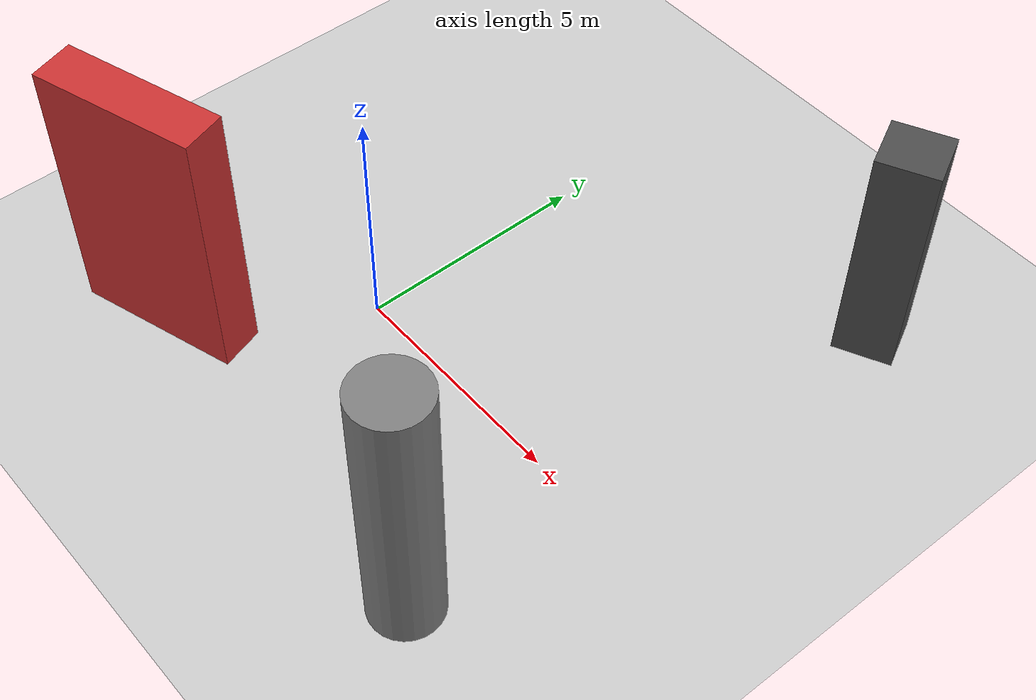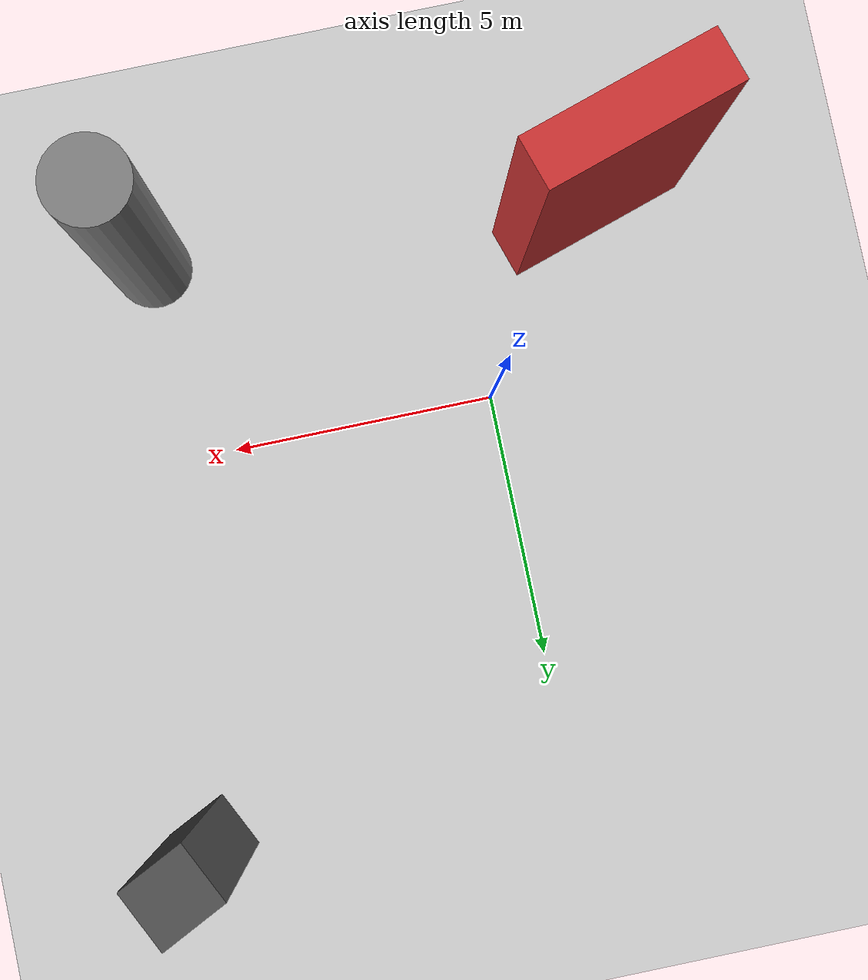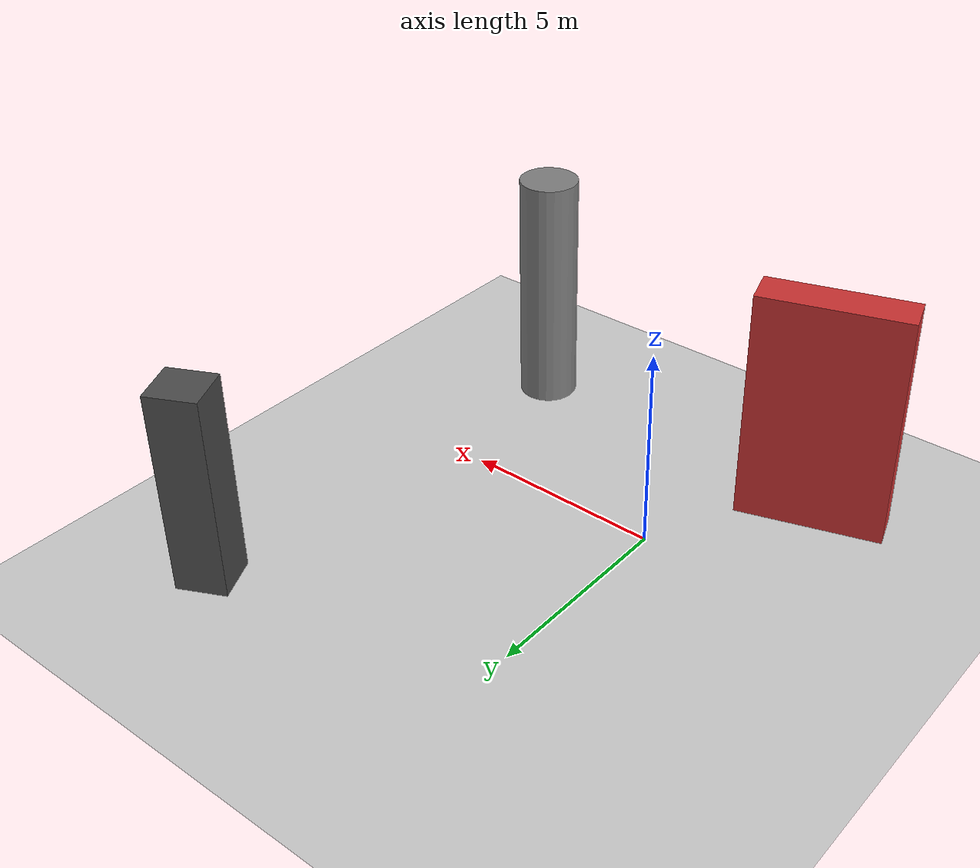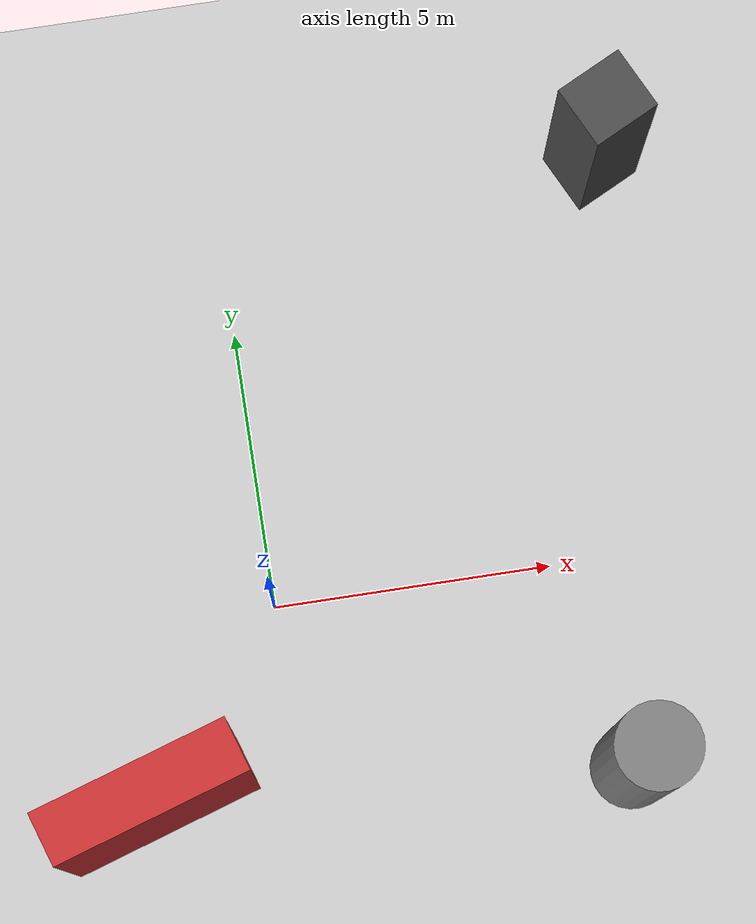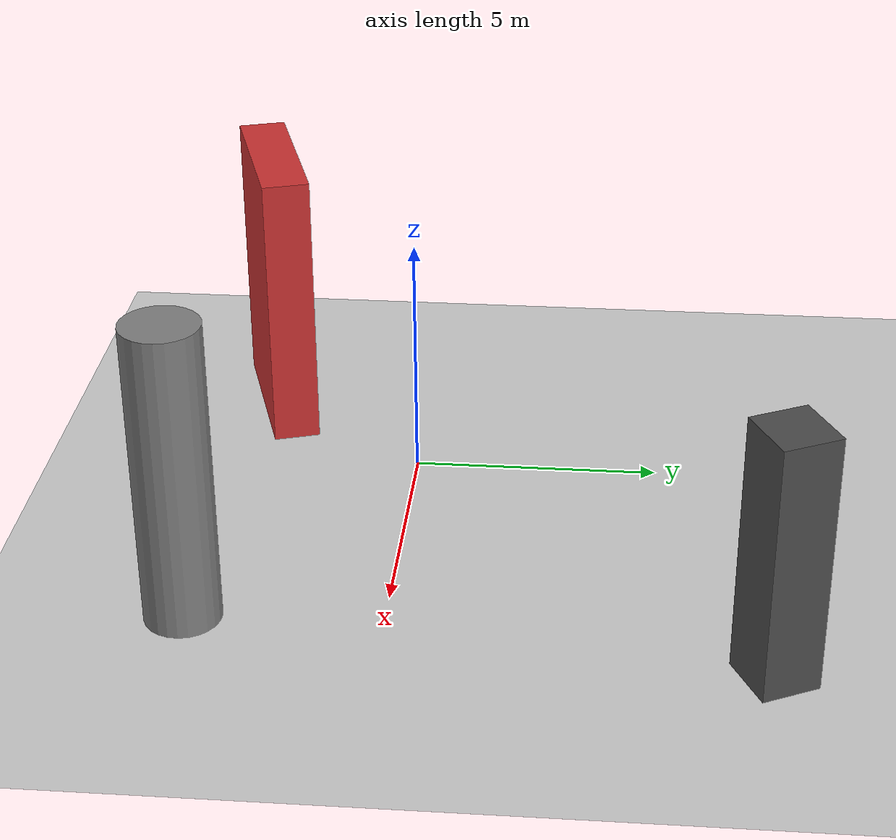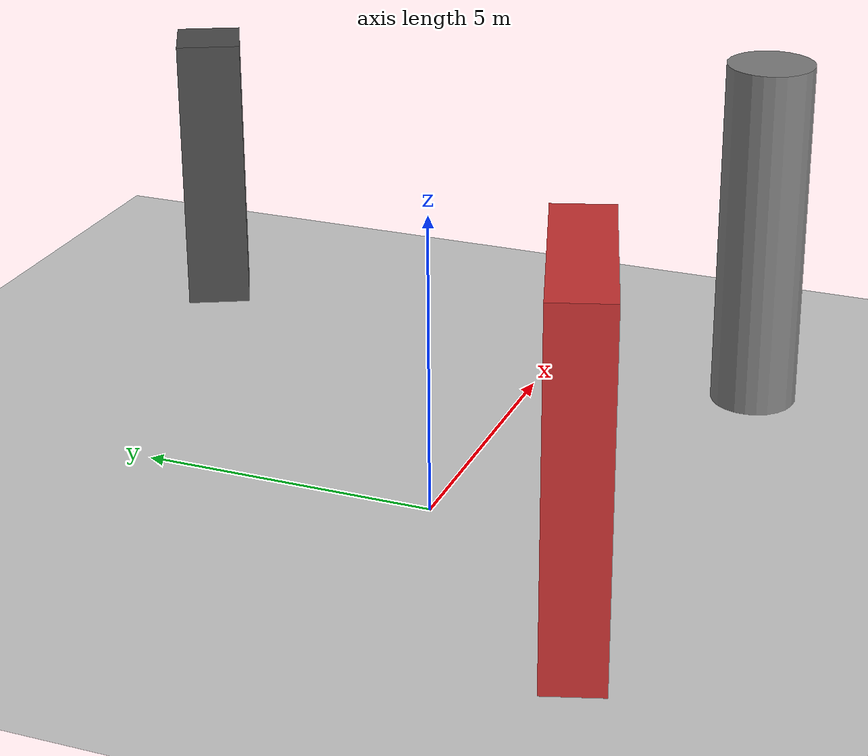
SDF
<?xml version='1.0'?>
<sdf version='1.6'>
  <world name='default'>
    <!-- Sun light -->
    <light name='sun' type='directional'>
      <cast_shadows>1</cast_shadows>
      <pose>0 0 10 0 0 0</pose>
      <diffuse>0.8 0.8 0.8 1</diffuse>
      <specular>0.2 0.2 0.2 1</specular>
      <attenuation>
        <range>1000</range>
        <constant>0.9</constant>
        <linear>0.01</linear>
        <quadratic>0.001</quadratic>
      </attenuation>
      <direction>-0.5 0.1 -0.9</direction>
    </light>

    <!-- Ground plane -->
    <model name='ground_plane'>
      <static>1</static>
      <link name='link'>
        <collision name='collision'>
          <geometry>
            <plane>
              <normal>0 0 1</normal>
              <size>100 100</size>
            </plane>
          </geometry>
          <surface>
            <contact>
              <collide_bitmask>65535</collide_bitmask>
              <ode/>
            </contact>
            <friction>
              <ode>
                <mu>100</mu>
                <mu2>50</mu2>
              </ode>
              <torsional><ode/></torsional>
            </friction>
            <bounce/>
          </surface>
          <max_contacts>10</max_contacts>
        </collision>
        <visual name='visual'>
          <cast_shadows>0</cast_shadows>
          <geometry>
            <plane>
              <normal>0 0 1</normal>
              <size>100 100</size>
            </plane>
          </geometry>
          <material>
            <script>
              <uri>file://media/materials/scripts/gazebo.material</uri>
              <n>Gazebo/Grey</n>
            </script>
          </material>
        </visual>
      </link>
    </model>

    <!-- Environment -->
    <magnetic_field>6e-06 2.3e-05 -4.2e-05</magnetic_field>
    <atmosphere type='adiabatic'/>
    <physics name='default_physics' default='0' type='ode'>
      <gravity>0 0 -9.8</gravity>
      <max_step_size>0.004</max_step_size>
      <real_time_factor>1</real_time_factor>
      <real_time_update_rate>250</real_time_update_rate>
    </physics>
    <scene>
      <ambient>0.4 0.4 0.4 1</ambient>
      <background>0.7 0.7 0.7 1</background>
      <shadows>1</shadows>
    </scene>
    <wind/>
    <spherical_coordinates>
      <surface_model>EARTH_WGS84</surface_model>
      <latitude_deg>0</latitude_deg>
      <longitude_deg>0</longitude_deg>
      <elevation>0</elevation>
      <heading_deg>0</heading_deg>
    </spherical_coordinates>

    <!-- ============ OBSTACLES (3) ============ -->
    <model name='obs_00'>
      <static>1</static>
      <link name='link'>
        <visual name='visual'>
          <geometry>
            <box>
              <size>3.5412 0.9703 5.8711</size>
            </box>
          </geometry>
          <material>
            <script>
              <n>Gazebo/Red</n>
              <uri>file://media/materials/scripts/gazebo.material</uri>
            </script>
            <ambient>0.8 0.2 0.2 1</ambient>
          </material>
        </visual>
        <collision name='collision'>
          <geometry>
            <box>
              <size>3.5412 0.9703 5.8711</size>
            </box>
          </geometry>
          <max_contacts>10</max_contacts>
          <surface>
            <contact><ode/></contact>
            <bounce/>
            <friction>
              <ode><mu>1</mu><mu2>1</mu2></ode>
              <torsional><ode/></torsional>
            </friction>
          </surface>
        </collision>
      </link>
      <pose>-2.5512 -3.2427 2.9355 0 0 0.3086</pose>
    </model>

    <model name='obs_01'>
      <static>1</static>
      <link name='link'>
        <visual name='visual'>
          <geometry>
            <cylinder>
              <radius>0.7436</radius>
              <length>6.1016</length>
            </cylinder>
          </geometry>
          <material>
            <script>
              <n>Gazebo/Grey</n>
              <uri>file://media/materials/scripts/gazebo.material</uri>
            </script>
            <ambient>0.5 0.5 0.5 1</ambient>
          </material>
        </visual>
        <collision name='collision'>
          <geometry>
            <cylinder>
              <radius>0.7436</radius>
              <length>6.1016</length>
            </cylinder>
          </geometry>
          <max_contacts>10</max_contacts>
          <surface>
            <contact><ode/></contact>
            <bounce/>
            <friction>
              <ode><mu>1</mu><mu2>1</mu2></ode>
              <torsional><ode/></torsional>
            </friction>
          </surface>
        </collision>
      </link>
      <pose>5.8730 -3.7810 3.0508 0 0 2.4317</pose>
    </model>

    <model name='obs_02'>
      <static>1</static>
      <link name='link'>
        <visual name='visual'>
          <geometry>
            <box>
              <size>1.1578 1.2399 5.1198</size>
            </box>
          </geometry>
          <material>
            <script>
              <n>Gazebo/DarkGrey</n>
              <uri>file://media/materials/scripts/gazebo.material</uri>
            </script>
            <ambient>0.3 0.3 0.3 1</ambient>
          </material>
        </visual>
        <collision name='collision'>
          <geometry>
            <box>
              <size>1.1578 1.2399 5.1198</size>
            </box>
          </geometry>
          <max_contacts>10</max_contacts>
          <surface>
            <contact><ode/></contact>
            <bounce/>
            <friction>
              <ode><mu>1</mu><mu2>1</mu2></ode>
              <torsional><ode/></torsional>
            </friction>
          </surface>
        </collision>
      </link>
      <pose>6.8569 7.1647 2.5599 0 0 2.0281</pose>
    </model>

    <!-- GUI camera -->
    <gui fullscreen='0'>
      <camera name='user_camera'>
        <pose>-15 0 18 0 0.85 0.15</pose>
        <view_controller>orbit</view_controller>
        <projection_type>perspective</projection_type>
      </camera>
    </gui>
  </world>
</sdf>
